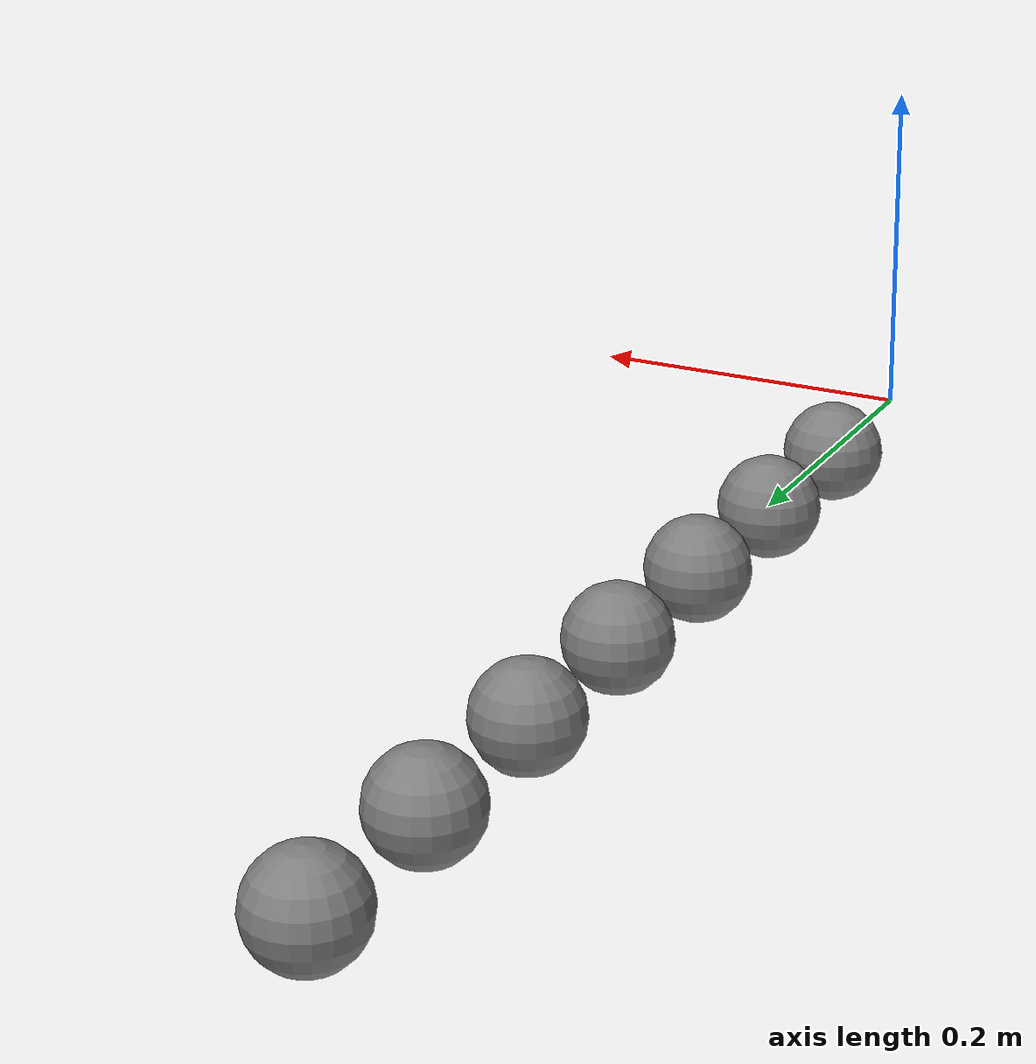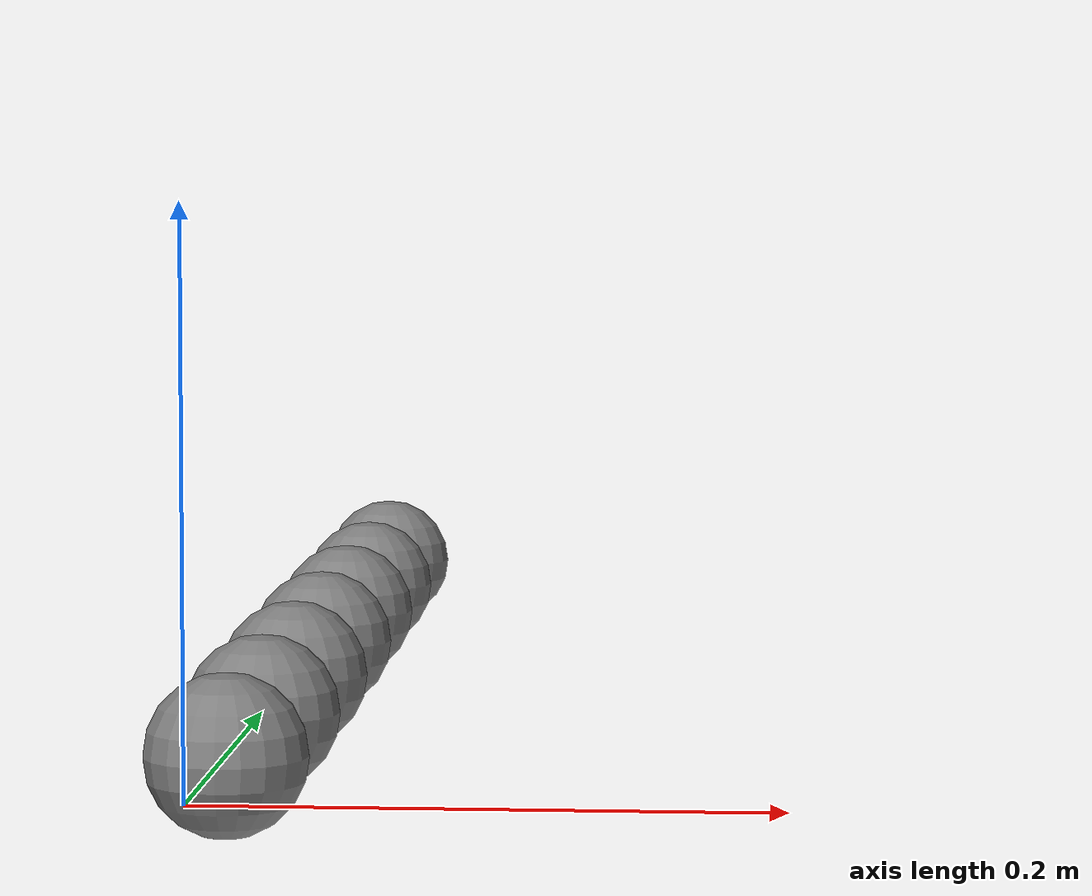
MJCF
<mujoco>
  <worldbody>
    <body name="motor1" pos="0 0.1 0">
      <joint name="slide1" type="slide" axis="0 0 1"/>
      <geom size=".03"/>
    </body>
    <body name="motor2" pos="0 0.2 0">
      <joint name="slide2" type="slide" axis="0 0 1"/>
      <geom size=".03"/>
    </body>
    <body name="motor3" pos="0 0.3 0">
      <joint name="slide3" type="slide" axis="0 0 1"/>
      <geom size=".03"/>
    </body>
    <body name="motor4" pos="0 0.4 0">
      <joint name="joint4"/>
      <geom size=".03"/>
    </body>
    <body name="motor5" pos="0 0.5 0">
      <joint name="slide5" type="slide" axis="0 0 1"/>
      <geom size=".03"/>
    </body>
    <body name="motor6" pos="0 0.6 0">
      <joint name="slide6" type="slide" axis="0 0 1"/>
      <geom size=".03"/>
    </body>
    <body name="motor7" pos="0 0.7 0">
      <joint name="slide7" type="slide" axis="0 0 1"/>
      <geom size=".03"/>
    </body>
  </worldbody>

  <actuator>
    <!-- DC motor back-EMF stateless damping -->
    <dcmotor name="dc_bias" joint="slide1" motorconst="2.0" resistance="0.5"/>

    <!-- DC motor velocity setpoint (kd) damping -->
    <dcmotor name="dc_vel" joint="slide2" motorconst="1.0" resistance="1.0" input="pos vel" controller="0 0 5"/>

    <!-- DC motor position controller damping -->
    <dcmotor name="dc_pos" joint="slide3" motorconst="1.0" resistance="1.0" input="pos vel" controller="10 0 5"/>

    <!-- DC motor with LuGre friction (sigma1 micro-damping) -->
    <dcmotor name="dc_lugre" joint="joint4" motorconst="0.05" resistance="2.0"
             damping="0.001" lugre="1e4 100 0.005 0.008 0.1"/>

    <!-- Stateful current, voltage mode (back-EMF only through act_dot) -->
    <dcmotor name="dc_stateful_v" joint="slide5"
             motorconst="2.0" resistance="0.5" inductance="0 0.001"/>

    <!-- Stateful current, position mode (controller + back-EMF through act_dot) -->
    <dcmotor name="dc_stateful_pos" joint="slide6"
             motorconst="1.0" resistance="1.0" inductance="0 0.001"
             input="pos vel" controller="10 0 5"/>

    <!-- Stateful current, velocity mode -->
    <dcmotor name="dc_stateful_vel" joint="slide7"
             motorconst="1.0" resistance="1.0" inductance="0 0.001"
             input="pos vel" controller="0 0 5"/>
  </actuator>
</mujoco>
